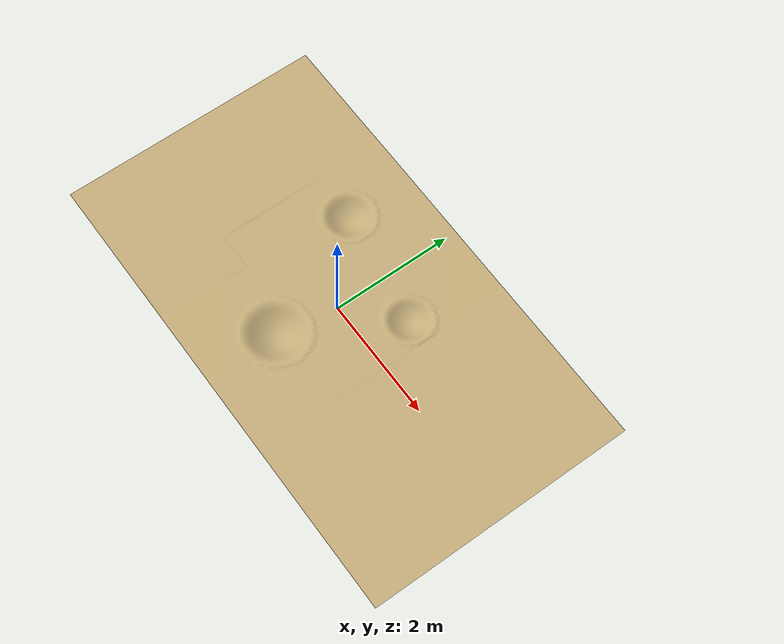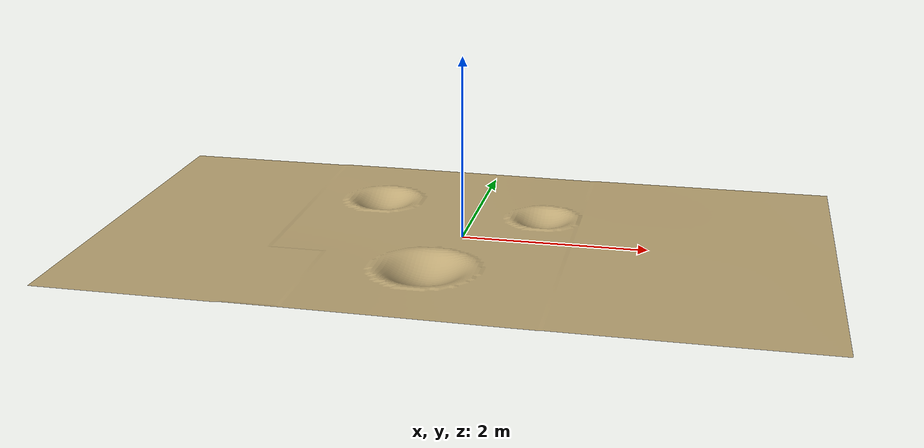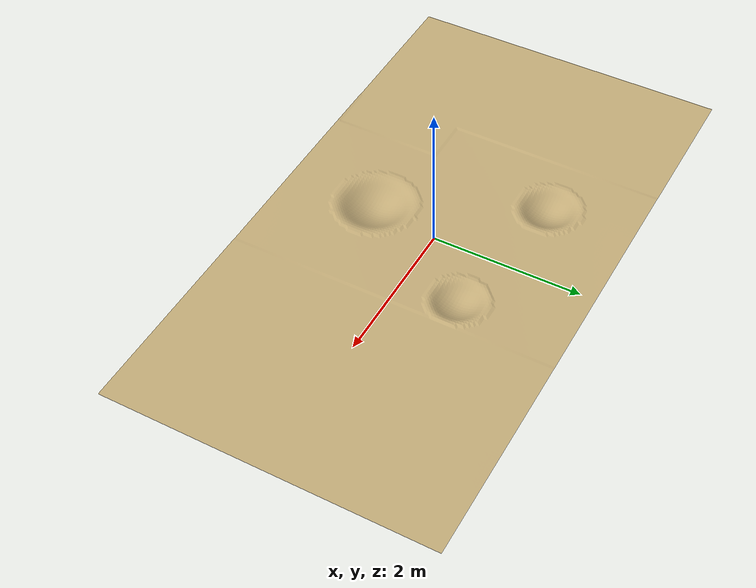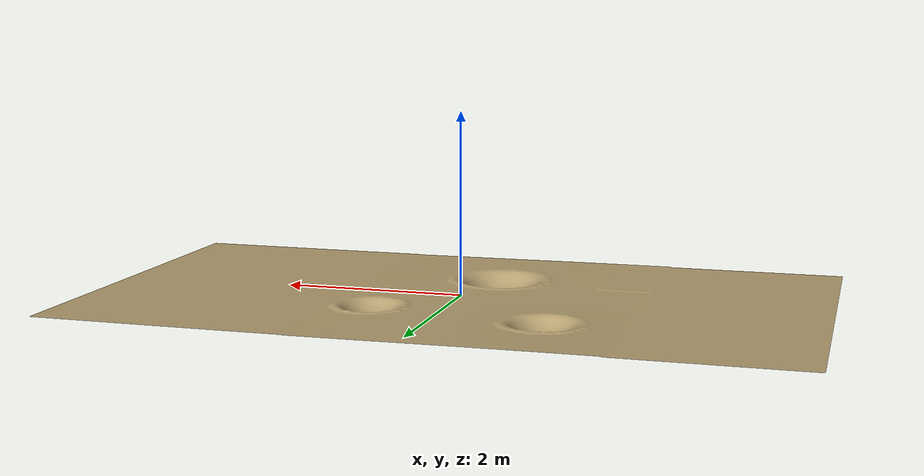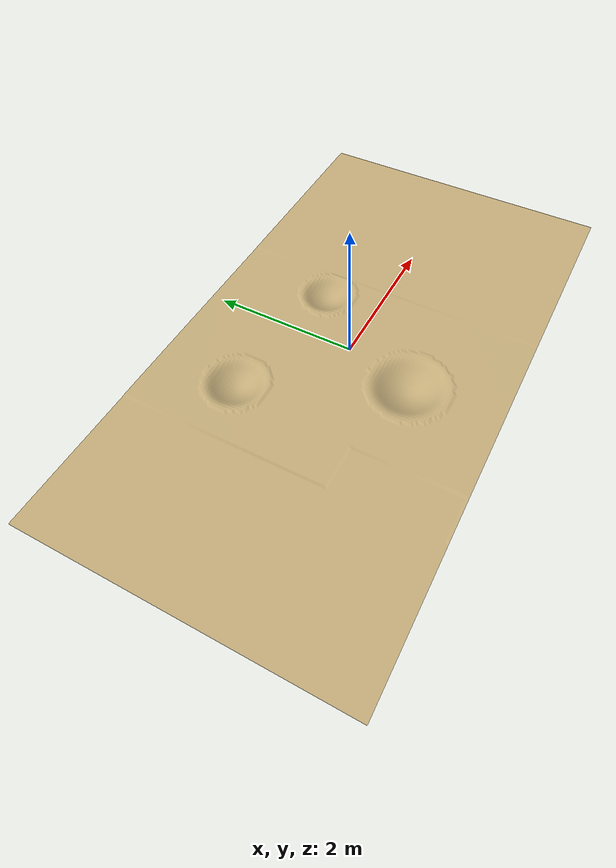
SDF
<?xml version="1.0" ?>
<sdf version="1.8">
  <model name="lunar_surface">
    <static>true</static>
    <link name="surface_link">
      <visual name="ground_visual">
        <pose>0 0 0 0 0 0</pose>
        <geometry>
          <mesh>
            <uri>model://lunar_surface/meshes/lunar_surface_rulebook.obj</uri>
          </mesh>
        </geometry>
        <material>
          <ambient>0.76 0.67 0.47 1</ambient>
          <diffuse>0.76 0.67 0.47 1</diffuse>
          <specular>0.1 0.1 0.1 1</specular>
          <pbr>
            <metal>
              <albedo_map>model://lunar_surface/meshes/sand_texture.png</albedo_map>
            </metal>
          </pbr>
        </material>
      </visual>
      <collision name="ground_collision">
        <pose>0 0 0 0 0 0</pose>
        <geometry>
          <mesh>
            <uri>model://lunar_surface/meshes/lunar_surface_rulebook.obj</uri>
          </mesh>
        </geometry>
        <surface>
          <friction>
            <ode>
              <mu>0.9</mu>
              <mu2>0.9</mu2>
            </ode>
          </friction>
        </surface>
      </collision>

    </link>
  </model>
</sdf>
